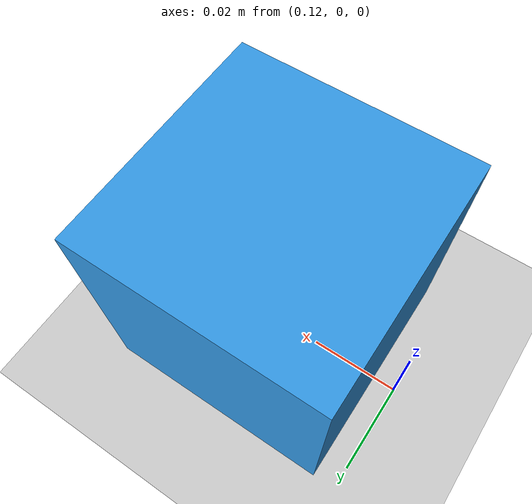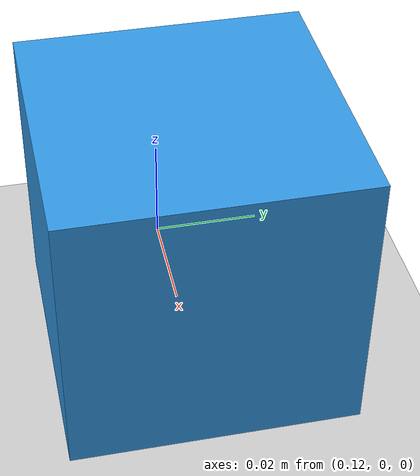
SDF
<?xml version="1.0"?>
<sdf version="1.7">
  <world name="leap_hand_grasp_world">

    <!-- Self-contained Sun -->
    <light name="sun" type="directional">
      <cast_shadows>true</cast_shadows>
      <pose>0 0 10 0 0 0</pose>
      <diffuse>0.8 0.8 0.8 1</diffuse>
      <direction>-0.5 0.1 -0.9</direction>
    </light>

    <!-- Self-contained Ground Plane -->
    <model name="ground_plane">
      <static>true</static>
      <link name="link">
        <collision name="collision">
          <geometry>
            <plane>
              <normal>0 0 1</normal>
              <size>100 100</size>
            </plane>
          </geometry>
          <surface>
            <friction>
              <ode>
                <mu>1.0</mu>
                <mu2>1.0</mu2>
              </ode>
            </friction>
          </surface>
        </collision>
        <visual name="visual">
          <geometry>
            <plane>
              <normal>0 0 1</normal>
              <size>100 100</size>
            </plane>
          </geometry>
          <material>
            <ambient>0.8 0.8 0.8 1</ambient>
            <diffuse>0.8 0.8 0.8 1</diffuse>
          </material>
        </visual>
      </link>
    </model>

    <!-- Graspable Box -->
    <model name="grasp_box">
      <pose>0.15 0.0 0.025 0 0 0</pose>
      <link name="box_link">
        <inertial>
          <mass>0.1</mass>
          <inertia>
            <ixx>0.0001</ixx><ixy>0.0</ixy><ixz>0.0</ixz>
            <iyy>0.0001</iyy><iyz>0.0</iyz><izz>0.0001</izz>
          </inertia>
        </inertial>
        <collision name="box_collision">
          <geometry>
            <box><size>0.05 0.05 0.05</size></box>
          </geometry>
          <surface>
            <friction>
              <ode><mu>0.8</mu><mu2>0.8</mu2></ode>
            </friction>
          </surface>
        </collision>
        <visual name="box_visual">
          <geometry>
            <box><size>0.05 0.05 0.05</size></box>
          </geometry>
          <material>
            <ambient>0.2 0.6 0.9 1.0</ambient>
            <diffuse>0.2 0.6 0.9 1.0</diffuse>
          </material>
        </visual>
      </link>
    </model>

    <!-- Required Gazebo Plugins -->
    <plugin filename="gz-sim-physics-system" name="gz::sim::systems::Physics"/>
    <plugin filename="gz-sim-user-commands-system" name="gz::sim::systems::UserCommands"/>
    <plugin filename="gz-sim-scene-broadcaster-system" name="gz::sim::systems::SceneBroadcaster"/>

  </world>
</sdf>
